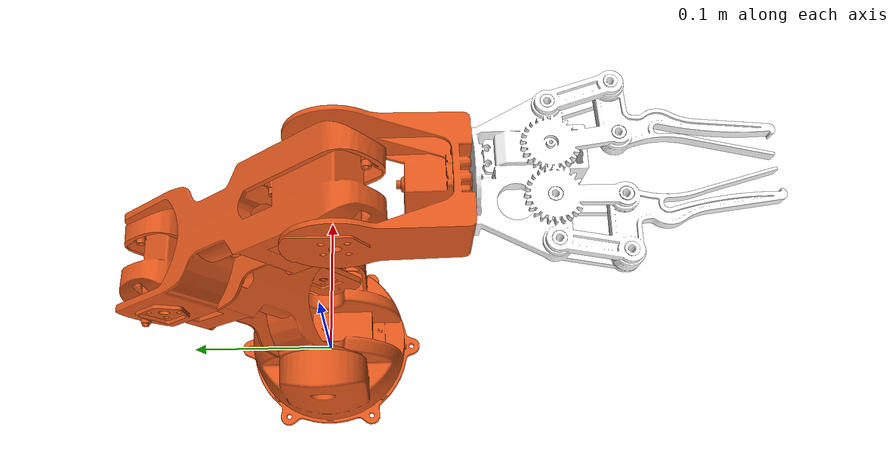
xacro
<?xml version="1.0" encoding="utf-8"?>
<robot name="robot_assembly" xmlns:xacro="http://www.ros.org/wiki/xacro">

    <!-- Constants for robot dimensions-->
    <xacro:property name="width" value="0.1" />
    <xacro:property name="height" value="2" />
    <xacro:property name="axle_offset" value="0.05" />
    <xacro:property name="damping" value="0.5" />
    <xacro:property name="friciton" value="100" />

    <!-- Materials -->
    <material name="white">
        <color rgba="1 1 1 1" />
    </material>

    <material name="orange">
        <color rgba="0.90 0.35 0.117 1" />
    </material>

    <material name="black">
        <color rgba="0 0 0 1" />
    </material>

    <!-- WORLD-->

    <link name="world">
    </link>
    <joint name="joint_world" type="fixed">
        <parent link="world" />
        <child link="base_link" />
    </joint>

    <!-- BASE LINK -->

    <link name="base_link">

        <inertial>
            <origin xyz="7.16570679801176E-10 0.00116092156507622 2.8893545031334E-06" rpy="0 0 0" />
            <mass value="0.0324100192967721" />
            <inertia ixx="2.68587605210783E-05" ixy="-4.84597989563569E-14"
                ixz="-3.40425204588481E-13" iyy="5.34932089470888E-05" iyz="-5.34738719597888E-10"
                izz="2.68551853927962E-05" />
        </inertial>

        <visual>
            <origin xyz="0 0 0" rpy="0 0 0" />
            <geometry>
                <mesh filename="file://$(find robo_arm)/meshes/base_link.STL" />
            </geometry>
            <material name="orange" />
        </visual>

        <collision>
            <origin xyz="0 0 0" rpy="0 0 0" />
            <geometry>
                <mesh filename="file://$(find robo_arm)/meshes/base_link.STL" />
            </geometry>
        </collision>

    </link>

    <gazebo reference="base_link">
        <material>Gazebo/Orange</material>
    </gazebo>

    <!-- JOINT 1 -->

    <joint name="Joint_1" type="revolute">
        <origin xyz="0 0 0" rpy="0 0 -3.1319" />
        <parent link="base_link" />
        <child link="Link_1" />
        <axis xyz="0 0 1" />
        <limit lower="-1.57" upper="1.57" effort="10" velocity="50" />
        <dynamics damping="${damping}" friction="${friciton}"/>
    </joint>

    <link name="Link_1">

        <inertial>
            <origin xyz="-0.0076360494909025 0.00173746113523518 0.0423898735296237" rpy="0 0 0" />
            <mass value="0.190717117623996" />
            <inertia ixx="0.00015099352493845" ixy="-1.84583823946254E-09"
                ixz="-4.84370294611225E-08" iyy="0.000124524225271564" iyz="2.72900596568772E-06"
                izz="0.00016196923748443" />
        </inertial>

        <visual>
            <origin xyz="0 0 0" rpy="0 0 0" />
            <geometry>
                <mesh filename="file://$(find robo_arm)/meshes/Link_1.STL" />
            </geometry>
            <material name="orange" />
        </visual>

        <collision>
            <origin xyz="0 0 0" rpy="0 0 0" />
            <geometry>
                <mesh filename="file://$(find robo_arm)/meshes/Link_1.STL" />
            </geometry>
        </collision>

    </link>

    <gazebo reference="Link_1">
        <material>Gazebo/Orange</material>
    </gazebo>

    <!-- JOINT 2 -->

    <joint name="Joint_2" type="revolute">
        <origin xyz="0 0 0.071305" rpy="3.1416 -0.64542 1.5708" />
        <parent link="Link_1" />
        <child link="Link_2" />
        <axis xyz="0 1 0" />
        <limit lower="-1.65" upper="0.35" effort="10" velocity="50" />
        <dynamics damping="${damping}" friction="${friciton}"/>
    </joint>

    <link name="Link_2">

        <inertial>
            <origin xyz="1.5639E-05 0.00028327 -0.082259" rpy="0 0 0" />
            <mass value="0.084639" />
            <inertia ixx="0.00014025" ixy="-4.6225E-12" ixz="-3.076E-07" iyy="0.00012793"
                iyz="1.6402E-07" izz="3.0857E-05" />
        </inertial>

        <visual>
            <origin xyz="0 0 0" rpy="0 0 0" />
            <geometry>
                <mesh filename="file://$(find robo_arm)/meshes/Link_2.STL" />
            </geometry>
            <material name="orange" />
        </visual>

        <collision>
            <origin xyz="0 0 0" rpy="0 0 0" />
            <geometry>
                <mesh filename="file://$(find robo_arm)/meshes/Link_2.STL" />
            </geometry>
        </collision>

    </link>

    <gazebo reference="Link_2">
        <material>Gazebo/Orange</material>
    </gazebo>

    <!-- JOINT 3 -->

    <joint name="Joint_3" type="revolute">
        <origin xyz="0 0 -0.12503" rpy="0 1.5181 -3.1416" />
        <parent link="Link_2" />
        <child link="Link_3" />
        <axis xyz="0 1 0" />
        <limit lower="-3.14" upper="0.14" effort="10" velocity="50" />
        <dynamics damping="${damping}" friction="${friciton}"/>
    </joint>

    <link name="Link_3">

        <inertial>
            <origin xyz="1.56358976851345E-05 -0.000283205718507318 -0.0822589976475606" rpy="0 0 0" />
            <mass value="0.0846391903579548" />
            <inertia ixx="0.000140247302733448" ixy="-4.69358368842248E-12"
                ixz="-3.07601656051575E-07" iyy="0.000127934879343709" iyz="-1.64072771614451E-07"
                izz="3.08569655735298E-05" />
        </inertial>

        <visual>
            <origin xyz="0 0 0" rpy="0 0 0" />
            <geometry>
                <mesh filename="file://$(find robo_arm)/meshes/Link_3.STL" />
            </geometry>
            <material name="orange" />
        </visual>

        <collision>
            <origin xyz="0 0 0" rpy="0 0 0" />
            <geometry>
                <mesh filename="file://$(find robo_arm)/meshes/Link_3.STL" />
            </geometry>
        </collision>

    </link>

    <gazebo reference="Link_3">
        <material>Gazebo/Orange</material>
    </gazebo>

    <!-- JOINT 4 -->

    <joint name="Joint_4" type="revolute">
        <origin xyz="0 0 -0.12503" rpy="-0.88402 0 1.5708" />
        <parent link="Link_3" />
        <child link="Link_4" />
        <axis xyz="1 0 0" />
        <limit lower="-2.3" upper="1" effort="10" velocity="50" />
        <dynamics damping="${damping}" friction="${friciton}"/>
    </joint>

    <link name="Link_4">
        <inertial>
            <origin xyz="-0.000290289833333423 0.0355291858374829 0.00215430200212582" rpy="0 0 0" />
            <mass value="0.0395556566949035" />
            <inertia ixx="2.27747448686024E-05" ixy="-1.15013948411467E-07"
                ixz="-7.6137139609455E-10" iyy="1.92306725633858E-05" iyz="-3.31159527434926E-07"
                izz="3.22545102910992E-05" />
        </inertial>

        <visual>
            <origin xyz="0 0 0" rpy="0 0 0" />
            <geometry>
                <mesh filename="file://$(find robo_arm)/meshes/Link_4.STL" />
            </geometry>
            <material name="orange" />
        </visual>
        <collision>
            <origin xyz="0 0 0" rpy="0 0 0" />
            <geometry>
                <mesh filename="file://$(find robo_arm)/meshes/Link_4.STL" />
            </geometry>
        </collision>
    </link>

    <gazebo reference="Link_4">
        <material>Gazebo/Orange</material>
    </gazebo>

    <!-- JOINT 5 -->

    <joint name="Joint_5" type="revolute">
        <origin xyz="-0.0002 0.059362 -0.0026" rpy="-1.6304 0 -1.5708" />
        <parent link="Link_4" />
        <child link="End_Effector" />
        <axis xyz="1 0 0" />
        <limit lower="-3.14" upper="0" effort="10" velocity="50" />
        <dynamics damping="${damping}" friction="${friciton}"/>
    </joint>

    <link name="End_Effector">
        <inertial>
            <origin xyz="-0.0410338250877696 0.00230286861801432 0.00425320117288218" rpy="0 0 0" />
            <mass value="0.0486239972257278" />
            <inertia ixx="8.01424949641006E-06" ixy="2.26577983146827E-07"
                ixz="4.03073122467701E-07" iyy="1.72794175621324E-05" iyz="2.87107880228718E-07"
                izz="1.26363118173937E-05" />
        </inertial>

        <visual>
            <origin xyz="0 0 0" rpy="0 0 0" />
            <geometry>
                <mesh filename="file://$(find robo_arm)/meshes/End_Effector.STL" />
            </geometry>
            <material name="white" />
        </visual>
        <collision>
            <origin xyz="0 0 0" rpy="0 0 0" />
            <geometry>
                <mesh filename="file://$(find robo_arm)/meshes/End_Effector.STL" />
            </geometry>
        </collision>
    </link>

    <gazebo reference="End_Effector">
        <material>Gazebo/White</material>
    </gazebo>

    <!-- Transmission elements -->

    <gazebo>
        <plugin name="gazebo_ros_joint_state_publisher" filename="libgazebo_ros_joint_state_publisher.so">
            <update_rate>20</update_rate>
            <joint_name>Joint_1</joint_name>
            <joint_name>Joint_2</joint_name>
            <joint_name>Joint_3</joint_name>
            <joint_name>Joint_4</joint_name>
            <joint_name>Joint_5</joint_name>
        </plugin>
    </gazebo>

    <gazebo>
        <plugin name="gazebo_ros_joint_pose_trajectory"
            filename="libgazebo_ros_joint_pose_trajectory.so">
            <update_rate>2</update_rate>
        </plugin>
    </gazebo>

    <joint name="camera_optical_joint" type="fixed">
        <origin xyz="-0.05 0.05 0" rpy="1.57 0 -3.14159" />
        <parent link="End_Effector" />
        <child link="camera_link_optical" />
        <axis xyz="0 0 0" />
    </joint>

    <link name="camera_link_optical"></link>

    <gazebo reference="camera_link_optical">
        <sensor type="depth" name="my_cam">
            <update_rate>20</update_rate>
            <visualize>true</visualize>
            <camera name="cam">
                <horizontal_fov>1.3962634</horizontal_fov>
                <image>
                    <width>640</width>
                    <height>480</height>
                    <format>R8B8G8</format>
                </image>
                <clip>
                    <near>0.02</near>
                    <far>300</far>
                </clip>
                <noise>
                    <type>gaussian</type>
                    <mean>0.0</mean>
                    <stddev>0.007</stddev>
                </noise>
            </camera>
            <plugin name="camera_controller" filename="libgazebo_ros_camera.so">
                <frame_name>camera_link_optical</frame_name>
                <min_depth>0.1</min_depth>
                <max_depth>500</max_depth>
            </plugin>
        </sensor>
    </gazebo>

</robot>
